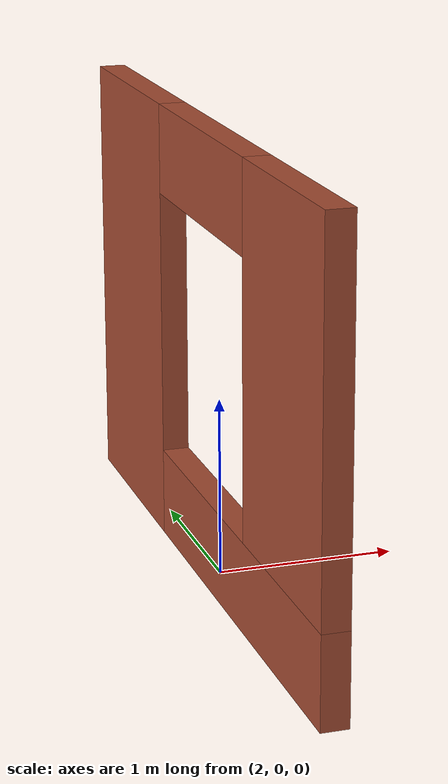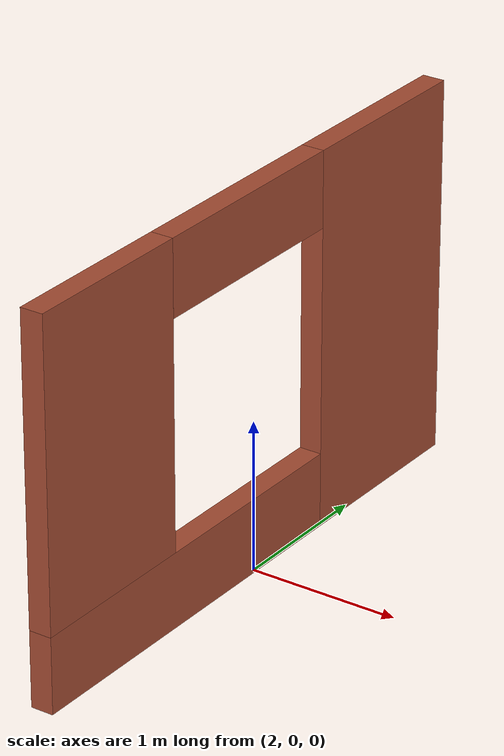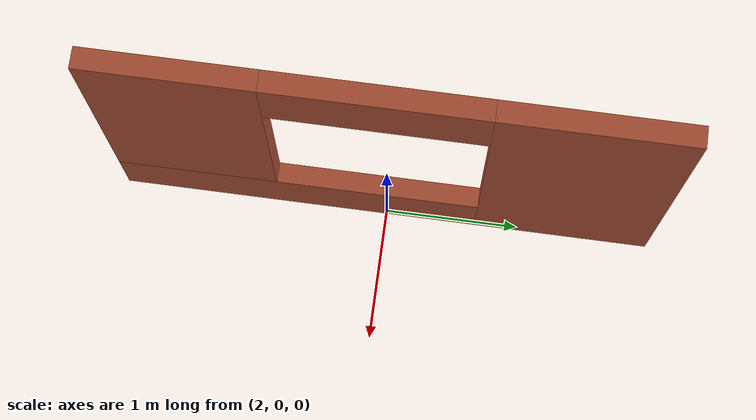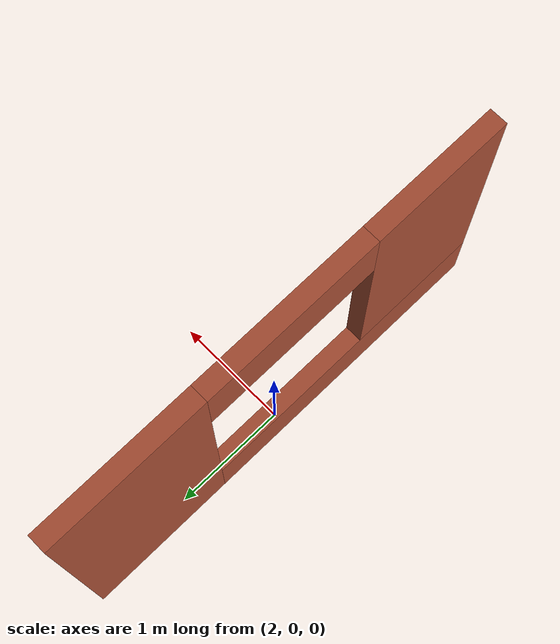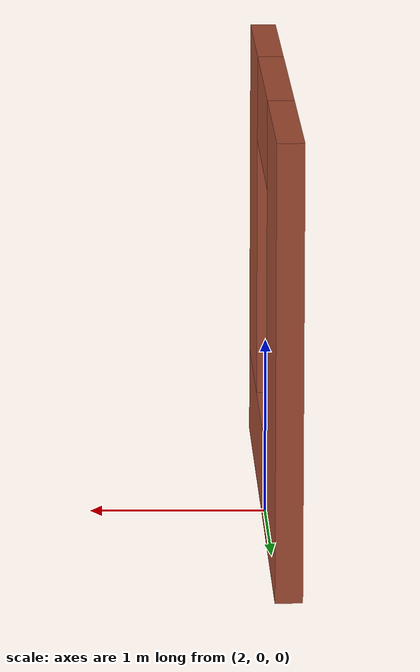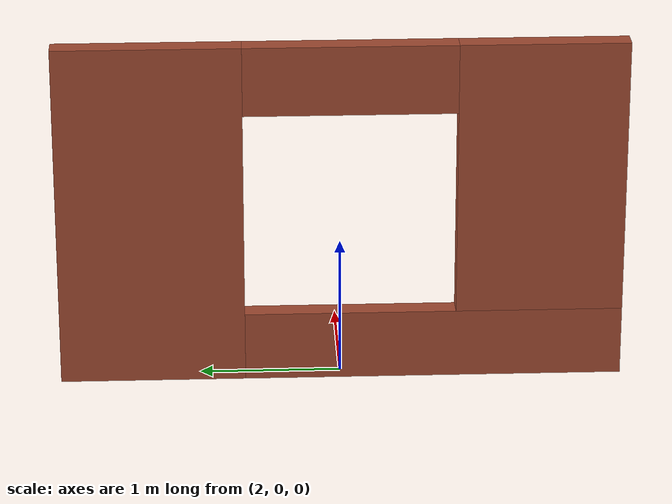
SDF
<?xml version='1.0'?>
<sdf version='1.6'>
  <model name='Wall'>
    <pose frame=''>1.9458 -0.004902 0 0 -0 0</pose>
    <link name='Wall_9'>
      <pose frame=''>0 0 0 0 0 -1.5708</pose>
      <visual name='Wall_9_Visual_0'>
        <pose frame=''>-1.34288 0 1.25 0 -0 0</pose>
        <geometry>
          <box>
            <size>1.31423 0.15 2.5</size>
          </box>
        </geometry>
        <material>
          <script>
            <uri>file://media/materials/scripts/gazebo.material</uri>
            <name>Gazebo/Bricks</name>
          </script>
          <ambient>1 1 1 1</ambient>
        </material>
      </visual>
      <collision name='Wall_9_Collision_0'>
        <geometry>
          <box>
            <size>1.31423 0.15 2.5</size>
          </box>
        </geometry>
        <pose frame=''>-1.34288 0 1.25 0 -0 0</pose>
      </collision>
      <visual name='Wall_9_Visual_1'>
        <pose frame=''>0.657116 0 0.25 0 -0 0</pose>
        <geometry>
          <box>
            <size>2.68577 0.15 0.5</size>
          </box>
        </geometry>
        <material>
          <script>
            <uri>file://media/materials/scripts/gazebo.material</uri>
            <name>Gazebo/Bricks</name>
          </script>
          <ambient>1 1 1 1</ambient>
        </material>
      </visual>
      <collision name='Wall_9_Collision_1'>
        <geometry>
          <box>
            <size>2.68577 0.15 0.5</size>
          </box>
        </geometry>
        <pose frame=''>0.657116 0 0.25 0 -0 0</pose>
      </collision>
      <visual name='Wall_9_Visual_2'>
        <pose frame=''>1.40712 0 1.5 0 -0 0</pose>
        <geometry>
          <box>
            <size>1.18577 0.15 2</size>
          </box>
        </geometry>
        <material>
          <script>
            <uri>file://media/materials/scripts/gazebo.material</uri>
            <name>Gazebo/Bricks</name>
          </script>
          <ambient>1 1 1 1</ambient>
        </material>
      </visual>
      <collision name='Wall_9_Collision_2'>
        <geometry>
          <box>
            <size>1.18577 0.15 2</size>
          </box>
        </geometry>
        <pose frame=''>1.40712 0 1.5 0 -0 0</pose>
      </collision>
      <visual name='Wall_9_Visual_3'>
        <pose frame=''>0.064232 0 2.25 0 -0 0</pose>
        <geometry>
          <box>
            <size>1.5 0.15 0.5</size>
          </box>
        </geometry>
        <material>
          <script>
            <uri>file://media/materials/scripts/gazebo.material</uri>
            <name>Gazebo/Bricks</name>
          </script>
          <ambient>1 1 1 1</ambient>
        </material>
      </visual>
      <collision name='Wall_9_Collision_3'>
        <geometry>
          <box>
            <size>1.5 0.15 0.5</size>
          </box>
        </geometry>
        <pose frame=''>0.064232 0 2.25 0 -0 0</pose>
      </collision>
    </link>
    <static>1</static>
  </model>
</sdf>
